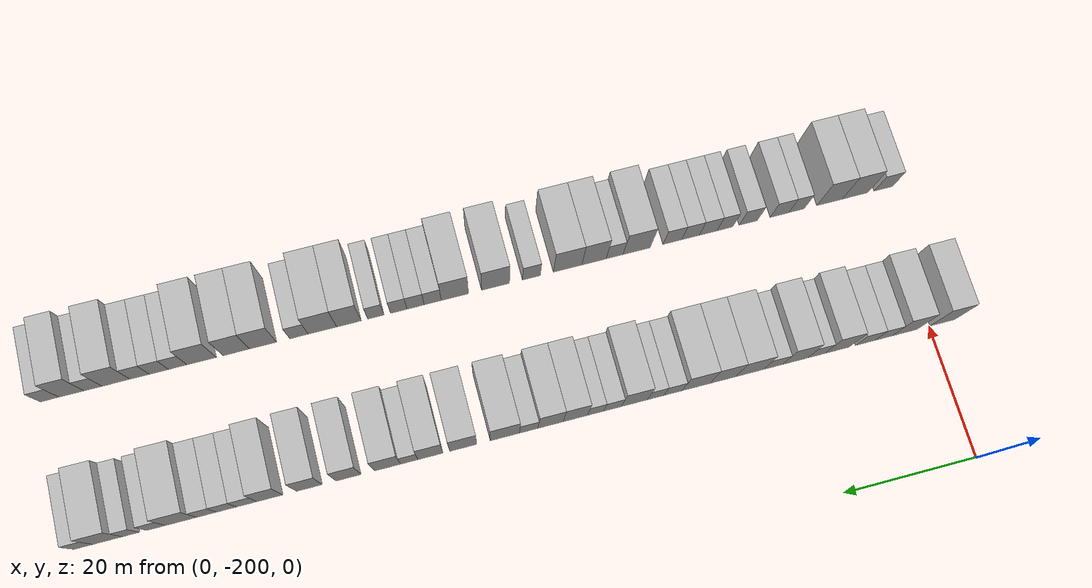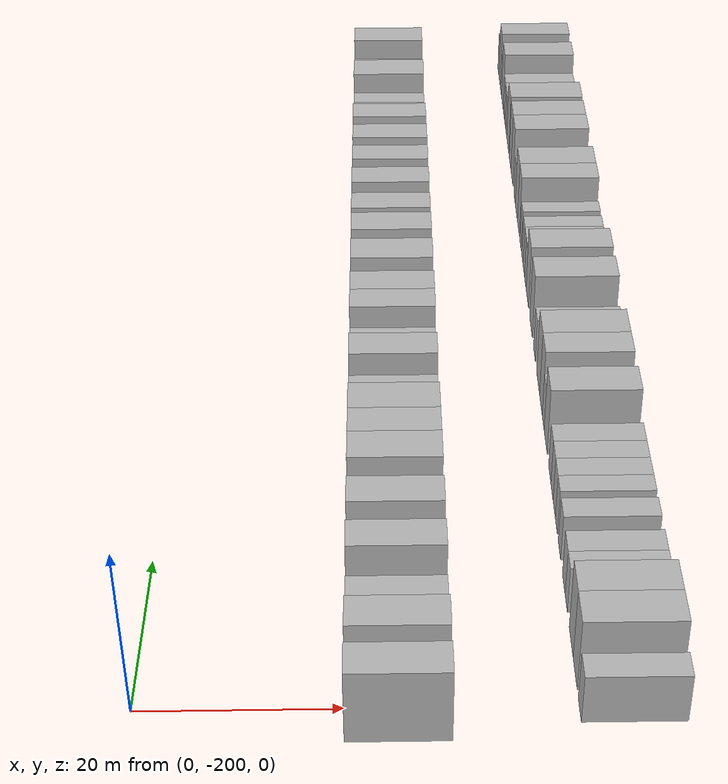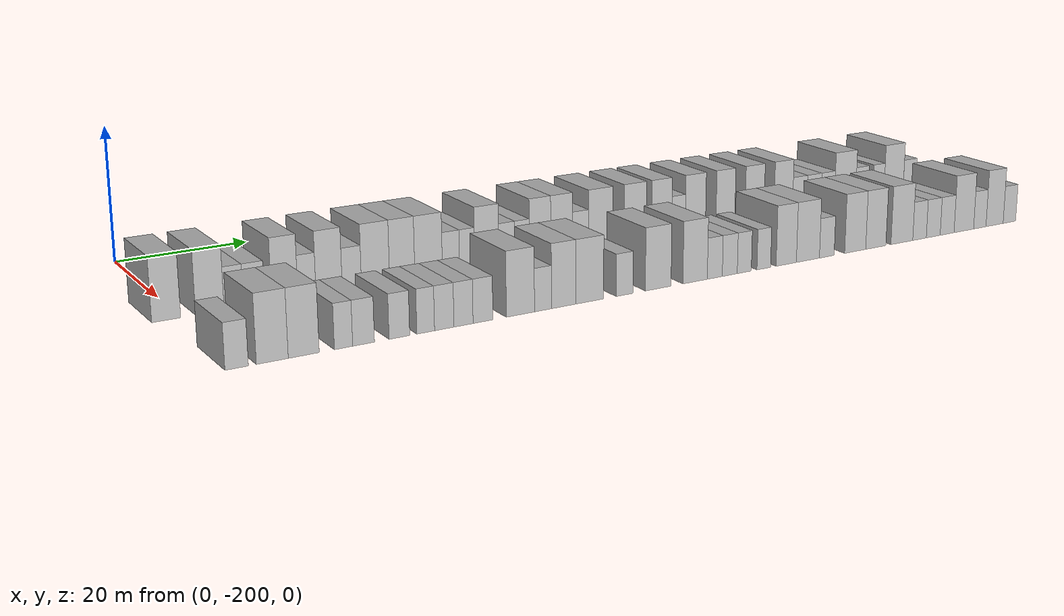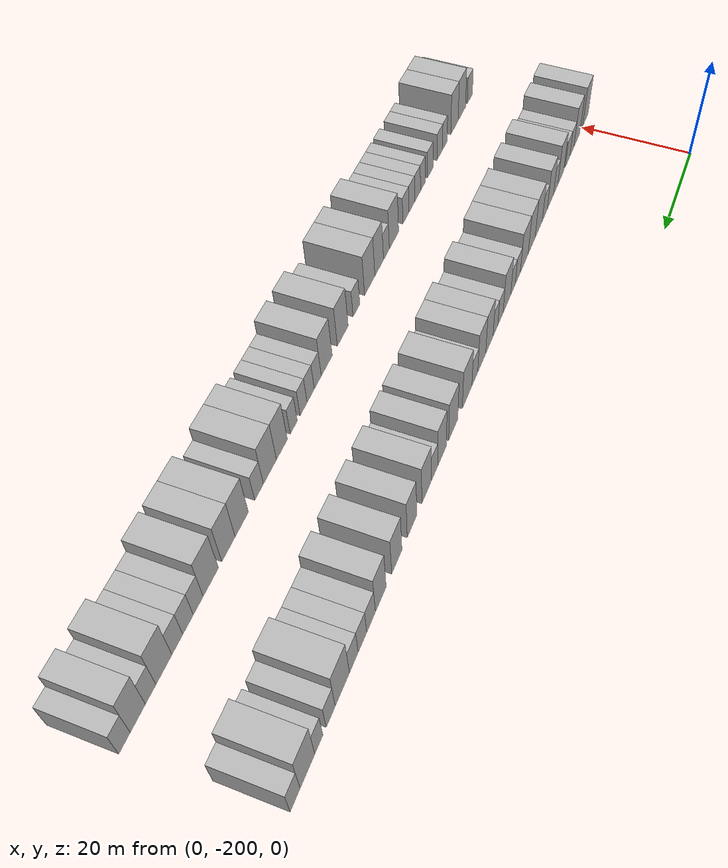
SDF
<sdf version="1.6">
 <world name="default">
  <model name="building_1">
   <static>1</static>
   <pose>25.0000 -202.0652 0 0.000000 0.000000 0.000000</pose>
   <link name="link">
    <pose>0 0 4.50 0 0 0</pose>
    <collision name="collision"><geometry><box><size>10.0000 3.8695 9.0000</size></box></geometry></collision>
    <visual name="visual">
     <cast_shadows>0</cast_shadows>
     <geometry><box><size>10.0000 3.8695 9.0000</size></box></geometry>
     <material>
      <script>
       <uri>model://HANNAS_wall/materials/scripts</uri>
       <uri>model://HANNAS_wall/materials/textures</uri>
       <name>vrc/HANNAS_wall</name>
      </script>
     </material>
    </visual>
   </link>
  </model>
  <model name="building_2">
   <static>1</static>
   <pose>25.0000 -196.1760 0 0.000000 0.000000 0.000000</pose>
   <link name="link">
    <pose>0 0 4.50 0 0 0</pose>
    <collision name="collision"><geometry><box><size>10.0000 3.9089 9.0000</size></box></geometry></collision>
    <visual name="visual">
     <cast_shadows>0</cast_shadows>
     <geometry><box><size>10.0000 3.9089 9.0000</size></box></geometry>
     <material>
      <script>
       <uri>model://HANNAS_wall/materials/scripts</uri>
       <uri>model://HANNAS_wall/materials/textures</uri>
       <name>vrc/HANNAS_wall</name>
      </script>
     </material>
    </visual>
   </link>
  </model>
  <model name="building_3">
   <static>1</static>
   <pose>25.0000 -192.8934 0 0.000000 0.000000 0.000000</pose>
   <link name="link">
    <pose>0 0 3.00 0 0 0</pose>
    <collision name="collision"><geometry><box><size>10.0000 2.6564 6.0000</size></box></geometry></collision>
    <visual name="visual">
     <cast_shadows>0</cast_shadows>
     <geometry><box><size>10.0000 2.6564 6.0000</size></box></geometry>
     <material>
      <script>
       <uri>model://HANNAS_wall/materials/scripts</uri>
       <uri>model://HANNAS_wall/materials/textures</uri>
       <name>vrc/HANNAS_wall</name>
      </script>
     </material>
    </visual>
   </link>
  </model>
  <model name="building_4">
   <static>1</static>
   <pose>25.0000 -190.0712 0 0.000000 0.000000 0.000000</pose>
   <link name="link">
    <pose>0 0 3.00 0 0 0</pose>
    <collision name="collision"><geometry><box><size>10.0000 2.9880 6.0000</size></box></geometry></collision>
    <visual name="visual">
     <cast_shadows>0</cast_shadows>
     <geometry><box><size>10.0000 2.9880 6.0000</size></box></geometry>
     <material>
      <script>
       <uri>model://HANNAS_wall/materials/scripts</uri>
       <uri>model://HANNAS_wall/materials/textures</uri>
       <name>vrc/HANNAS_wall</name>
      </script>
     </material>
    </visual>
   </link>
  </model>
  <model name="building_5">
   <static>1</static>
   <pose>25.0000 -185.6982 0 0.000000 0.000000 0.000000</pose>
   <link name="link">
    <pose>0 0 4.50 0 0 0</pose>
    <collision name="collision"><geometry><box><size>10.0000 3.7579 9.0000</size></box></geometry></collision>
    <visual name="visual">
     <cast_shadows>0</cast_shadows>
     <geometry><box><size>10.0000 3.7579 9.0000</size></box></geometry>
     <material>
      <script>
       <uri>model://HANNAS_wall/materials/scripts</uri>
       <uri>model://HANNAS_wall/materials/textures</uri>
       <name>vrc/HANNAS_wall</name>
      </script>
     </material>
    </visual>
   </link>
  </model>
  <model name="building_6">
   <static>1</static>
   <pose>25.0000 -182.5065 0 0.000000 0.000000 0.000000</pose>
   <link name="link">
    <pose>0 0 3.00 0 0 0</pose>
    <collision name="collision"><geometry><box><size>10.0000 2.6255 6.0000</size></box></geometry></collision>
    <visual name="visual">
     <cast_shadows>0</cast_shadows>
     <geometry><box><size>10.0000 2.6255 6.0000</size></box></geometry>
     <material>
      <script>
       <uri>model://HANNAS_wall/materials/scripts</uri>
       <uri>model://HANNAS_wall/materials/textures</uri>
       <name>vrc/HANNAS_wall</name>
      </script>
     </material>
    </visual>
   </link>
  </model>
  <model name="building_7">
   <static>1</static>
   <pose>25.0000 -179.2586 0 0.000000 0.000000 0.000000</pose>
   <link name="link">
    <pose>0 0 4.50 0 0 0</pose>
    <collision name="collision"><geometry><box><size>10.0000 3.8704 9.0000</size></box></geometry></collision>
    <visual name="visual">
     <cast_shadows>0</cast_shadows>
     <geometry><box><size>10.0000 3.8704 9.0000</size></box></geometry>
     <material>
      <script>
       <uri>model://HANNAS_wall/materials/scripts</uri>
       <uri>model://HANNAS_wall/materials/textures</uri>
       <name>vrc/HANNAS_wall</name>
      </script>
     </material>
    </visual>
   </link>
  </model>
  <model name="building_8">
   <static>1</static>
   <pose>25.0000 -175.8857 0 0.000000 0.000000 0.000000</pose>
   <link name="link">
    <pose>0 0 3.00 0 0 0</pose>
    <collision name="collision"><geometry><box><size>10.0000 2.8753 6.0000</size></box></geometry></collision>
    <visual name="visual">
     <cast_shadows>0</cast_shadows>
     <geometry><box><size>10.0000 2.8753 6.0000</size></box></geometry>
     <material>
      <script>
       <uri>model://HANNAS_wall/materials/scripts</uri>
       <uri>model://HANNAS_wall/materials/textures</uri>
       <name>vrc/HANNAS_wall</name>
      </script>
     </material>
    </visual>
   </link>
  </model>
  <model name="building_9">
   <static>1</static>
   <pose>25.0000 -172.3090 0 0.000000 0.000000 0.000000</pose>
   <link name="link">
    <pose>0 0 4.50 0 0 0</pose>
    <collision name="collision"><geometry><box><size>10.0000 4.2781 9.0000</size></box></geometry></collision>
    <visual name="visual">
     <cast_shadows>0</cast_shadows>
     <geometry><box><size>10.0000 4.2781 9.0000</size></box></geometry>
     <material>
      <script>
       <uri>model://HANNAS_wall/materials/scripts</uri>
       <uri>model://HANNAS_wall/materials/textures</uri>
       <name>vrc/HANNAS_wall</name>
      </script>
     </material>
    </visual>
   </link>
  </model>
  <model name="building_10">
   <static>1</static>
   <pose>25.0000 -168.2211 0 0.000000 0.000000 0.000000</pose>
   <link name="link">
    <pose>0 0 4.50 0 0 0</pose>
    <collision name="collision"><geometry><box><size>10.0000 3.8978 9.0000</size></box></geometry></collision>
    <visual name="visual">
     <cast_shadows>0</cast_shadows>
     <geometry><box><size>10.0000 3.8978 9.0000</size></box></geometry>
     <material>
      <script>
       <uri>model://HANNAS_wall/materials/scripts</uri>
       <uri>model://HANNAS_wall/materials/textures</uri>
       <name>vrc/HANNAS_wall</name>
      </script>
     </material>
    </visual>
   </link>
  </model>
  <model name="building_11">
   <static>1</static>
   <pose>25.0000 -164.1070 0 0.000000 0.000000 0.000000</pose>
   <link name="link">
    <pose>0 0 4.50 0 0 0</pose>
    <collision name="collision"><geometry><box><size>10.0000 4.3304 9.0000</size></box></geometry></collision>
    <visual name="visual">
     <cast_shadows>0</cast_shadows>
     <geometry><box><size>10.0000 4.3304 9.0000</size></box></geometry>
     <material>
      <script>
       <uri>model://HANNAS_wall/materials/scripts</uri>
       <uri>model://HANNAS_wall/materials/textures</uri>
       <name>vrc/HANNAS_wall</name>
      </script>
     </material>
    </visual>
   </link>
  </model>
  <model name="building_12">
   <static>1</static>
   <pose>25.0000 -160.5706 0 0.000000 0.000000 0.000000</pose>
   <link name="link">
    <pose>0 0 3.00 0 0 0</pose>
    <collision name="collision"><geometry><box><size>10.0000 2.7423 6.0000</size></box></geometry></collision>
    <visual name="visual">
     <cast_shadows>0</cast_shadows>
     <geometry><box><size>10.0000 2.7423 6.0000</size></box></geometry>
     <material>
      <script>
       <uri>model://HANNAS_wall/materials/scripts</uri>
       <uri>model://HANNAS_wall/materials/textures</uri>
       <name>vrc/HANNAS_wall</name>
      </script>
     </material>
    </visual>
   </link>
  </model>
  <model name="building_13">
   <static>1</static>
   <pose>25.0000 -157.9767 0 0.000000 0.000000 0.000000</pose>
   <link name="link">
    <pose>0 0 3.00 0 0 0</pose>
    <collision name="collision"><geometry><box><size>10.0000 2.4453 6.0000</size></box></geometry></collision>
    <visual name="visual">
     <cast_shadows>0</cast_shadows>
     <geometry><box><size>10.0000 2.4453 6.0000</size></box></geometry>
     <material>
      <script>
       <uri>model://HANNAS_wall/materials/scripts</uri>
       <uri>model://HANNAS_wall/materials/textures</uri>
       <name>vrc/HANNAS_wall</name>
      </script>
     </material>
    </visual>
   </link>
  </model>
  <model name="building_14">
   <static>1</static>
   <pose>25.0000 -154.7850 0 0.000000 0.000000 0.000000</pose>
   <link name="link">
    <pose>0 0 4.50 0 0 0</pose>
    <collision name="collision"><geometry><box><size>10.0000 3.9381 9.0000</size></box></geometry></collision>
    <visual name="visual">
     <cast_shadows>0</cast_shadows>
     <geometry><box><size>10.0000 3.9381 9.0000</size></box></geometry>
     <material>
      <script>
       <uri>model://HANNAS_wall/materials/scripts</uri>
       <uri>model://HANNAS_wall/materials/textures</uri>
       <name>vrc/HANNAS_wall</name>
      </script>
     </material>
    </visual>
   </link>
  </model>
  <model name="building_15">
   <static>1</static>
   <pose>25.0000 -151.4833 0 0.000000 0.000000 0.000000</pose>
   <link name="link">
    <pose>0 0 3.00 0 0 0</pose>
    <collision name="collision"><geometry><box><size>10.0000 2.6653 6.0000</size></box></geometry></collision>
    <visual name="visual">
     <cast_shadows>0</cast_shadows>
     <geometry><box><size>10.0000 2.6653 6.0000</size></box></geometry>
     <material>
      <script>
       <uri>model://HANNAS_wall/materials/scripts</uri>
       <uri>model://HANNAS_wall/materials/textures</uri>
       <name>vrc/HANNAS_wall</name>
      </script>
     </material>
    </visual>
   </link>
  </model>
  <model name="building_16">
   <static>1</static>
   <pose>25.0000 -148.9385 0 0.000000 0.000000 0.000000</pose>
   <link name="link">
    <pose>0 0 3.00 0 0 0</pose>
    <collision name="collision"><geometry><box><size>10.0000 2.4245 6.0000</size></box></geometry></collision>
    <visual name="visual">
     <cast_shadows>0</cast_shadows>
     <geometry><box><size>10.0000 2.4245 6.0000</size></box></geometry>
     <material>
      <script>
       <uri>model://HANNAS_wall/materials/scripts</uri>
       <uri>model://HANNAS_wall/materials/textures</uri>
       <name>vrc/HANNAS_wall</name>
      </script>
     </material>
    </visual>
   </link>
  </model>
  <model name="building_17">
   <static>1</static>
   <pose>25.0000 -145.9141 0 0.000000 0.000000 0.000000</pose>
   <link name="link">
    <pose>0 0 4.50 0 0 0</pose>
    <collision name="collision"><geometry><box><size>10.0000 3.6242 9.0000</size></box></geometry></collision>
    <visual name="visual">
     <cast_shadows>0</cast_shadows>
     <geometry><box><size>10.0000 3.6242 9.0000</size></box></geometry>
     <material>
      <script>
       <uri>model://HANNAS_wall/materials/scripts</uri>
       <uri>model://HANNAS_wall/materials/textures</uri>
       <name>vrc/HANNAS_wall</name>
      </script>
     </material>
    </visual>
   </link>
  </model>
  <model name="building_18">
   <static>1</static>
   <pose>25.0000 -142.2166 0 0.000000 0.000000 0.000000</pose>
   <link name="link">
    <pose>0 0 4.50 0 0 0</pose>
    <collision name="collision"><geometry><box><size>10.0000 3.7708 9.0000</size></box></geometry></collision>
    <visual name="visual">
     <cast_shadows>0</cast_shadows>
     <geometry><box><size>10.0000 3.7708 9.0000</size></box></geometry>
     <material>
      <script>
       <uri>model://HANNAS_wall/materials/scripts</uri>
       <uri>model://HANNAS_wall/materials/textures</uri>
       <name>vrc/HANNAS_wall</name>
      </script>
     </material>
    </visual>
   </link>
  </model>
  <model name="building_19">
   <static>1</static>
   <pose>25.0000 -138.9541 0 0.000000 0.000000 0.000000</pose>
   <link name="link">
    <pose>0 0 3.00 0 0 0</pose>
    <collision name="collision"><geometry><box><size>10.0000 2.7542 6.0000</size></box></geometry></collision>
    <visual name="visual">
     <cast_shadows>0</cast_shadows>
     <geometry><box><size>10.0000 2.7542 6.0000</size></box></geometry>
     <material>
      <script>
       <uri>model://HANNAS_wall/materials/scripts</uri>
       <uri>model://HANNAS_wall/materials/textures</uri>
       <name>vrc/HANNAS_wall</name>
      </script>
     </material>
    </visual>
   </link>
  </model>
  <model name="building_20">
   <static>1</static>
   <pose>25.0000 -135.4102 0 0.000000 0.000000 0.000000</pose>
   <link name="link">
    <pose>0 0 4.50 0 0 0</pose>
    <collision name="collision"><geometry><box><size>10.0000 4.3336 9.0000</size></box></geometry></collision>
    <visual name="visual">
     <cast_shadows>0</cast_shadows>
     <geometry><box><size>10.0000 4.3336 9.0000</size></box></geometry>
     <material>
      <script>
       <uri>model://HANNAS_wall/materials/scripts</uri>
       <uri>model://HANNAS_wall/materials/textures</uri>
       <name>vrc/HANNAS_wall</name>
      </script>
     </material>
    </visual>
   </link>
  </model>
  <model name="building_21">
   <static>1</static>
   <pose>25.0000 -129.2474 0 0.000000 0.000000 0.000000</pose>
   <link name="link">
    <pose>0 0 4.50 0 0 0</pose>
    <collision name="collision"><geometry><box><size>10.0000 3.9918 9.0000</size></box></geometry></collision>
    <visual name="visual">
     <cast_shadows>0</cast_shadows>
     <geometry><box><size>10.0000 3.9918 9.0000</size></box></geometry>
     <material>
      <script>
       <uri>model://HANNAS_wall/materials/scripts</uri>
       <uri>model://HANNAS_wall/materials/textures</uri>
       <name>vrc/HANNAS_wall</name>
      </script>
     </material>
    </visual>
   </link>
  </model>
  <model name="building_22">
   <static>1</static>
   <pose>25.0000 -124.4086 0 0.000000 0.000000 0.000000</pose>
   <link name="link">
    <pose>0 0 4.50 0 0 0</pose>
    <collision name="collision"><geometry><box><size>10.0000 3.6859 9.0000</size></box></geometry></collision>
    <visual name="visual">
     <cast_shadows>0</cast_shadows>
     <geometry><box><size>10.0000 3.6859 9.0000</size></box></geometry>
     <material>
      <script>
       <uri>model://HANNAS_wall/materials/scripts</uri>
       <uri>model://HANNAS_wall/materials/textures</uri>
       <name>vrc/HANNAS_wall</name>
      </script>
     </material>
    </visual>
   </link>
  </model>
  <model name="building_23">
   <static>1</static>
   <pose>25.0000 -121.2948 0 0.000000 0.000000 0.000000</pose>
   <link name="link">
    <pose>0 0 3.00 0 0 0</pose>
    <collision name="collision"><geometry><box><size>10.0000 2.5416 6.0000</size></box></geometry></collision>
    <visual name="visual">
     <cast_shadows>0</cast_shadows>
     <geometry><box><size>10.0000 2.5416 6.0000</size></box></geometry>
     <material>
      <script>
       <uri>model://HANNAS_wall/materials/scripts</uri>
       <uri>model://HANNAS_wall/materials/textures</uri>
       <name>vrc/HANNAS_wall</name>
      </script>
     </material>
    </visual>
   </link>
  </model>
  <model name="building_24">
   <static>1</static>
   <pose>25.0000 -118.1047 0 0.000000 0.000000 0.000000</pose>
   <link name="link">
    <pose>0 0 4.50 0 0 0</pose>
    <collision name="collision"><geometry><box><size>10.0000 3.8387 9.0000</size></box></geometry></collision>
    <visual name="visual">
     <cast_shadows>0</cast_shadows>
     <geometry><box><size>10.0000 3.8387 9.0000</size></box></geometry>
     <material>
      <script>
       <uri>model://HANNAS_wall/materials/scripts</uri>
       <uri>model://HANNAS_wall/materials/textures</uri>
       <name>vrc/HANNAS_wall</name>
      </script>
     </material>
    </visual>
   </link>
  </model>
  <model name="building_25">
   <static>1</static>
   <pose>25.0000 -112.3611 0 0.000000 0.000000 0.000000</pose>
   <link name="link">
    <pose>0 0 4.50 0 0 0</pose>
    <collision name="collision"><geometry><box><size>10.0000 3.6486 9.0000</size></box></geometry></collision>
    <visual name="visual">
     <cast_shadows>0</cast_shadows>
     <geometry><box><size>10.0000 3.6486 9.0000</size></box></geometry>
     <material>
      <script>
       <uri>model://HANNAS_wall/materials/scripts</uri>
       <uri>model://HANNAS_wall/materials/textures</uri>
       <name>vrc/HANNAS_wall</name>
      </script>
     </material>
    </visual>
   </link>
  </model>
  <model name="building_26">
   <static>1</static>
   <pose>25.0000 -106.6655 0 0.000000 0.000000 0.000000</pose>
   <link name="link">
    <pose>0 0 4.50 0 0 0</pose>
    <collision name="collision"><geometry><box><size>10.0000 3.7426 9.0000</size></box></geometry></collision>
    <visual name="visual">
     <cast_shadows>0</cast_shadows>
     <geometry><box><size>10.0000 3.7426 9.0000</size></box></geometry>
     <material>
      <script>
       <uri>model://HANNAS_wall/materials/scripts</uri>
       <uri>model://HANNAS_wall/materials/textures</uri>
       <name>vrc/HANNAS_wall</name>
      </script>
     </material>
    </visual>
   </link>
  </model>
  <model name="building_27">
   <static>1</static>
   <pose>25.0000 -100.9194 0 0.000000 0.000000 0.000000</pose>
   <link name="link">
    <pose>0 0 4.50 0 0 0</pose>
    <collision name="collision"><geometry><box><size>10.0000 3.7495 9.0000</size></box></geometry></collision>
    <visual name="visual">
     <cast_shadows>0</cast_shadows>
     <geometry><box><size>10.0000 3.7495 9.0000</size></box></geometry>
     <material>
      <script>
       <uri>model://HANNAS_wall/materials/scripts</uri>
       <uri>model://HANNAS_wall/materials/textures</uri>
       <name>vrc/HANNAS_wall</name>
      </script>
     </material>
    </visual>
   </link>
  </model>
  <model name="building_28">
   <static>1</static>
   <pose>25.0000 -97.5588 0 0.000000 0.000000 0.000000</pose>
   <link name="link">
    <pose>0 0 3.00 0 0 0</pose>
    <collision name="collision"><geometry><box><size>10.0000 2.9717 6.0000</size></box></geometry></collision>
    <visual name="visual">
     <cast_shadows>0</cast_shadows>
     <geometry><box><size>10.0000 2.9717 6.0000</size></box></geometry>
     <material>
      <script>
       <uri>model://HANNAS_wall/materials/scripts</uri>
       <uri>model://HANNAS_wall/materials/textures</uri>
       <name>vrc/HANNAS_wall</name>
      </script>
     </material>
    </visual>
   </link>
  </model>
  <model name="building_29">
   <static>1</static>
   <pose>25.0000 -94.6453 0 0.000000 0.000000 0.000000</pose>
   <link name="link">
    <pose>0 0 3.00 0 0 0</pose>
    <collision name="collision"><geometry><box><size>10.0000 2.8553 6.0000</size></box></geometry></collision>
    <visual name="visual">
     <cast_shadows>0</cast_shadows>
     <geometry><box><size>10.0000 2.8553 6.0000</size></box></geometry>
     <material>
      <script>
       <uri>model://HANNAS_wall/materials/scripts</uri>
       <uri>model://HANNAS_wall/materials/textures</uri>
       <name>vrc/HANNAS_wall</name>
      </script>
     </material>
    </visual>
   </link>
  </model>
  <model name="building_30">
   <static>1</static>
   <pose>25.0000 -91.7965 0 0.000000 0.000000 0.000000</pose>
   <link name="link">
    <pose>0 0 3.00 0 0 0</pose>
    <collision name="collision"><geometry><box><size>10.0000 2.8423 6.0000</size></box></geometry></collision>
    <visual name="visual">
     <cast_shadows>0</cast_shadows>
     <geometry><box><size>10.0000 2.8423 6.0000</size></box></geometry>
     <material>
      <script>
       <uri>model://HANNAS_wall/materials/scripts</uri>
       <uri>model://HANNAS_wall/materials/textures</uri>
       <name>vrc/HANNAS_wall</name>
      </script>
     </material>
    </visual>
   </link>
  </model>
  <model name="building_31">
   <static>1</static>
   <pose>25.0000 -88.1324 0 0.000000 0.000000 0.000000</pose>
   <link name="link">
    <pose>0 0 4.50 0 0 0</pose>
    <collision name="collision"><geometry><box><size>10.0000 4.4860 9.0000</size></box></geometry></collision>
    <visual name="visual">
     <cast_shadows>0</cast_shadows>
     <geometry><box><size>10.0000 4.4860 9.0000</size></box></geometry>
     <material>
      <script>
       <uri>model://HANNAS_wall/materials/scripts</uri>
       <uri>model://HANNAS_wall/materials/textures</uri>
       <name>vrc/HANNAS_wall</name>
      </script>
     </material>
    </visual>
   </link>
  </model>
  <model name="building_32">
   <static>1</static>
   <pose>25.0000 -84.5244 0 0.000000 0.000000 0.000000</pose>
   <link name="link">
    <pose>0 0 3.00 0 0 0</pose>
    <collision name="collision"><geometry><box><size>10.0000 2.7300 6.0000</size></box></geometry></collision>
    <visual name="visual">
     <cast_shadows>0</cast_shadows>
     <geometry><box><size>10.0000 2.7300 6.0000</size></box></geometry>
     <material>
      <script>
       <uri>model://HANNAS_wall/materials/scripts</uri>
       <uri>model://HANNAS_wall/materials/textures</uri>
       <name>vrc/HANNAS_wall</name>
      </script>
     </material>
    </visual>
   </link>
  </model>
  <model name="building_33">
   <static>1</static>
   <pose>25.0000 -80.9583 0 0.000000 0.000000 0.000000</pose>
   <link name="link">
    <pose>0 0 3.00 0 0 0</pose>
    <collision name="collision"><geometry><box><size>10.0000 2.4023 6.0000</size></box></geometry></collision>
    <visual name="visual">
     <cast_shadows>0</cast_shadows>
     <geometry><box><size>10.0000 2.4023 6.0000</size></box></geometry>
     <material>
      <script>
       <uri>model://HANNAS_wall/materials/scripts</uri>
       <uri>model://HANNAS_wall/materials/textures</uri>
       <name>vrc/HANNAS_wall</name>
      </script>
     </material>
    </visual>
   </link>
  </model>
  <model name="building_34">
   <static>1</static>
   <pose>25.0000 -77.6460 0 0.000000 0.000000 0.000000</pose>
   <link name="link">
    <pose>0 0 4.50 0 0 0</pose>
    <collision name="collision"><geometry><box><size>10.0000 4.2224 9.0000</size></box></geometry></collision>
    <visual name="visual">
     <cast_shadows>0</cast_shadows>
     <geometry><box><size>10.0000 4.2224 9.0000</size></box></geometry>
     <material>
      <script>
       <uri>model://HANNAS_wall/materials/scripts</uri>
       <uri>model://HANNAS_wall/materials/textures</uri>
       <name>vrc/HANNAS_wall</name>
      </script>
     </material>
    </visual>
   </link>
  </model>
  <model name="building_35">
   <static>1</static>
   <pose>25.0000 -74.1463 0 0.000000 0.000000 0.000000</pose>
   <link name="link">
    <pose>0 0 3.00 0 0 0</pose>
    <collision name="collision"><geometry><box><size>10.0000 2.7769 6.0000</size></box></geometry></collision>
    <visual name="visual">
     <cast_shadows>0</cast_shadows>
     <geometry><box><size>10.0000 2.7769 6.0000</size></box></geometry>
     <material>
      <script>
       <uri>model://HANNAS_wall/materials/scripts</uri>
       <uri>model://HANNAS_wall/materials/textures</uri>
       <name>vrc/HANNAS_wall</name>
      </script>
     </material>
    </visual>
   </link>
  </model>
  <model name="building_109">
   <static>1</static>
   <pose>47.0000 -200.5299 0 0.000000 0.000000 0.000000</pose>
   <link name="link">
    <pose>0 0 3.00 0 0 0</pose>
    <collision name="collision"><geometry><box><size>10.0000 2.9402 6.0000</size></box></geometry></collision>
    <visual name="visual">
     <cast_shadows>0</cast_shadows>
     <geometry><box><size>10.0000 2.9402 6.0000</size></box></geometry>
     <material>
      <script>
       <uri>model://HANNAS_wall/materials/scripts</uri>
       <uri>model://HANNAS_wall/materials/textures</uri>
       <name>vrc/HANNAS_wall</name>
      </script>
     </material>
    </visual>
   </link>
  </model>
  <model name="building_110">
   <static>1</static>
   <pose>47.0000 -196.0163 0 0.000000 0.000000 0.000000</pose>
   <link name="link">
    <pose>0 0 4.50 0 0 0</pose>
    <collision name="collision"><geometry><box><size>10.0000 4.0870 9.0000</size></box></geometry></collision>
    <visual name="visual">
     <cast_shadows>0</cast_shadows>
     <geometry><box><size>10.0000 4.0870 9.0000</size></box></geometry>
     <material>
      <script>
       <uri>model://HANNAS_wall/materials/scripts</uri>
       <uri>model://HANNAS_wall/materials/textures</uri>
       <name>vrc/HANNAS_wall</name>
      </script>
     </material>
    </visual>
   </link>
  </model>
  <model name="building_111">
   <static>1</static>
   <pose>47.0000 -191.9500 0 0.000000 0.000000 0.000000</pose>
   <link name="link">
    <pose>0 0 4.50 0 0 0</pose>
    <collision name="collision"><geometry><box><size>10.0000 4.0455 9.0000</size></box></geometry></collision>
    <visual name="visual">
     <cast_shadows>0</cast_shadows>
     <geometry><box><size>10.0000 4.0455 9.0000</size></box></geometry>
     <material>
      <script>
       <uri>model://HANNAS_wall/materials/scripts</uri>
       <uri>model://HANNAS_wall/materials/textures</uri>
       <name>vrc/HANNAS_wall</name>
      </script>
     </material>
    </visual>
   </link>
  </model>
  <model name="building_112">
   <static>1</static>
   <pose>47.0000 -186.7006 0 0.000000 0.000000 0.000000</pose>
   <link name="link">
    <pose>0 0 3.00 0 0 0</pose>
    <collision name="collision"><geometry><box><size>10.0000 2.4532 6.0000</size></box></geometry></collision>
    <visual name="visual">
     <cast_shadows>0</cast_shadows>
     <geometry><box><size>10.0000 2.4532 6.0000</size></box></geometry>
     <material>
      <script>
       <uri>model://HANNAS_wall/materials/scripts</uri>
       <uri>model://HANNAS_wall/materials/textures</uri>
       <name>vrc/HANNAS_wall</name>
      </script>
     </material>
    </visual>
   </link>
  </model>
  <model name="building_113">
   <static>1</static>
   <pose>47.0000 -183.9958 0 0.000000 0.000000 0.000000</pose>
   <link name="link">
    <pose>0 0 3.00 0 0 0</pose>
    <collision name="collision"><geometry><box><size>10.0000 2.9564 6.0000</size></box></geometry></collision>
    <visual name="visual">
     <cast_shadows>0</cast_shadows>
     <geometry><box><size>10.0000 2.9564 6.0000</size></box></geometry>
     <material>
      <script>
       <uri>model://HANNAS_wall/materials/scripts</uri>
       <uri>model://HANNAS_wall/materials/textures</uri>
       <name>vrc/HANNAS_wall</name>
      </script>
     </material>
    </visual>
   </link>
  </model>
  <model name="building_114">
   <static>1</static>
   <pose>47.0000 -179.0828 0 0.000000 0.000000 0.000000</pose>
   <link name="link">
    <pose>0 0 3.00 0 0 0</pose>
    <collision name="collision"><geometry><box><size>10.0000 2.8697 6.0000</size></box></geometry></collision>
    <visual name="visual">
     <cast_shadows>0</cast_shadows>
     <geometry><box><size>10.0000 2.8697 6.0000</size></box></geometry>
     <material>
      <script>
       <uri>model://HANNAS_wall/materials/scripts</uri>
       <uri>model://HANNAS_wall/materials/textures</uri>
       <name>vrc/HANNAS_wall</name>
      </script>
     </material>
    </visual>
   </link>
  </model>
  <model name="building_115">
   <static>1</static>
   <pose>47.0000 -175.3966 0 0.000000 0.000000 0.000000</pose>
   <link name="link">
    <pose>0 0 3.00 0 0 0</pose>
    <collision name="collision"><geometry><box><size>10.0000 2.5027 6.0000</size></box></geometry></collision>
    <visual name="visual">
     <cast_shadows>0</cast_shadows>
     <geometry><box><size>10.0000 2.5027 6.0000</size></box></geometry>
     <material>
      <script>
       <uri>model://HANNAS_wall/materials/scripts</uri>
       <uri>model://HANNAS_wall/materials/textures</uri>
       <name>vrc/HANNAS_wall</name>
      </script>
     </material>
    </visual>
   </link>
  </model>
  <model name="building_116">
   <static>1</static>
   <pose>47.0000 -172.7574 0 0.000000 0.000000 0.000000</pose>
   <link name="link">
    <pose>0 0 3.00 0 0 0</pose>
    <collision name="collision"><geometry><box><size>10.0000 2.7756 6.0000</size></box></geometry></collision>
    <visual name="visual">
     <cast_shadows>0</cast_shadows>
     <geometry><box><size>10.0000 2.7756 6.0000</size></box></geometry>
     <material>
      <script>
       <uri>model://HANNAS_wall/materials/scripts</uri>
       <uri>model://HANNAS_wall/materials/textures</uri>
       <name>vrc/HANNAS_wall</name>
      </script>
     </material>
    </visual>
   </link>
  </model>
  <model name="building_117">
   <static>1</static>
   <pose>47.0000 -169.9855 0 0.000000 0.000000 0.000000</pose>
   <link name="link">
    <pose>0 0 3.00 0 0 0</pose>
    <collision name="collision"><geometry><box><size>10.0000 2.7683 6.0000</size></box></geometry></collision>
    <visual name="visual">
     <cast_shadows>0</cast_shadows>
     <geometry><box><size>10.0000 2.7683 6.0000</size></box></geometry>
     <material>
      <script>
       <uri>model://HANNAS_wall/materials/scripts</uri>
       <uri>model://HANNAS_wall/materials/textures</uri>
       <name>vrc/HANNAS_wall</name>
      </script>
     </material>
    </visual>
   </link>
  </model>
  <model name="building_118">
   <static>1</static>
   <pose>47.0000 -167.1449 0 0.000000 0.000000 0.000000</pose>
   <link name="link">
    <pose>0 0 3.00 0 0 0</pose>
    <collision name="collision"><geometry><box><size>10.0000 2.9127 6.0000</size></box></geometry></collision>
    <visual name="visual">
     <cast_shadows>0</cast_shadows>
     <geometry><box><size>10.0000 2.9127 6.0000</size></box></geometry>
     <material>
      <script>
       <uri>model://HANNAS_wall/materials/scripts</uri>
       <uri>model://HANNAS_wall/materials/textures</uri>
       <name>vrc/HANNAS_wall</name>
      </script>
     </material>
    </visual>
   </link>
  </model>
  <model name="building_119">
   <static>1</static>
   <pose>47.0000 -161.5686 0 0.000000 0.000000 0.000000</pose>
   <link name="link">
    <pose>0 0 4.50 0 0 0</pose>
    <collision name="collision"><geometry><box><size>10.0000 4.2398 9.0000</size></box></geometry></collision>
    <visual name="visual">
     <cast_shadows>0</cast_shadows>
     <geometry><box><size>10.0000 4.2398 9.0000</size></box></geometry>
     <material>
      <script>
       <uri>model://HANNAS_wall/materials/scripts</uri>
       <uri>model://HANNAS_wall/materials/textures</uri>
       <name>vrc/HANNAS_wall</name>
      </script>
     </material>
    </visual>
   </link>
  </model>
  <model name="building_120">
   <static>1</static>
   <pose>47.0000 -158.1487 0 0.000000 0.000000 0.000000</pose>
   <link name="link">
    <pose>0 0 3.00 0 0 0</pose>
    <collision name="collision"><geometry><box><size>10.0000 2.6001 6.0000</size></box></geometry></collision>
    <visual name="visual">
     <cast_shadows>0</cast_shadows>
     <geometry><box><size>10.0000 2.6001 6.0000</size></box></geometry>
     <material>
      <script>
       <uri>model://HANNAS_wall/materials/scripts</uri>
       <uri>model://HANNAS_wall/materials/textures</uri>
       <name>vrc/HANNAS_wall</name>
      </script>
     </material>
    </visual>
   </link>
  </model>
  <model name="building_121">
   <static>1</static>
   <pose>47.0000 -154.9622 0 0.000000 0.000000 0.000000</pose>
   <link name="link">
    <pose>0 0 4.50 0 0 0</pose>
    <collision name="collision"><geometry><box><size>10.0000 3.7729 9.0000</size></box></geometry></collision>
    <visual name="visual">
     <cast_shadows>0</cast_shadows>
     <geometry><box><size>10.0000 3.7729 9.0000</size></box></geometry>
     <material>
      <script>
       <uri>model://HANNAS_wall/materials/scripts</uri>
       <uri>model://HANNAS_wall/materials/textures</uri>
       <name>vrc/HANNAS_wall</name>
      </script>
     </material>
    </visual>
   </link>
  </model>
  <model name="building_122">
   <static>1</static>
   <pose>47.0000 -150.8723 0 0.000000 0.000000 0.000000</pose>
   <link name="link">
    <pose>0 0 4.50 0 0 0</pose>
    <collision name="collision"><geometry><box><size>10.0000 4.4069 9.0000</size></box></geometry></collision>
    <visual name="visual">
     <cast_shadows>0</cast_shadows>
     <geometry><box><size>10.0000 4.4069 9.0000</size></box></geometry>
     <material>
      <script>
       <uri>model://HANNAS_wall/materials/scripts</uri>
       <uri>model://HANNAS_wall/materials/textures</uri>
       <name>vrc/HANNAS_wall</name>
      </script>
     </material>
    </visual>
   </link>
  </model>
  <model name="building_123">
   <static>1</static>
   <pose>47.0000 -145.2937 0 0.000000 0.000000 0.000000</pose>
   <link name="link">
    <pose>0 0 3.00 0 0 0</pose>
    <collision name="collision"><geometry><box><size>10.0000 2.7503 6.0000</size></box></geometry></collision>
    <visual name="visual">
     <cast_shadows>0</cast_shadows>
     <geometry><box><size>10.0000 2.7503 6.0000</size></box></geometry>
     <material>
      <script>
       <uri>model://HANNAS_wall/materials/scripts</uri>
       <uri>model://HANNAS_wall/materials/textures</uri>
       <name>vrc/HANNAS_wall</name>
      </script>
     </material>
    </visual>
   </link>
  </model>
  <model name="building_124">
   <static>1</static>
   <pose>47.0000 -139.7840 0 0.000000 0.000000 0.000000</pose>
   <link name="link">
    <pose>0 0 4.50 0 0 0</pose>
    <collision name="collision"><geometry><box><size>10.0000 4.2691 9.0000</size></box></geometry></collision>
    <visual name="visual">
     <cast_shadows>0</cast_shadows>
     <geometry><box><size>10.0000 4.2691 9.0000</size></box></geometry>
     <material>
      <script>
       <uri>model://HANNAS_wall/materials/scripts</uri>
       <uri>model://HANNAS_wall/materials/textures</uri>
       <name>vrc/HANNAS_wall</name>
      </script>
     </material>
    </visual>
   </link>
  </model>
  <model name="building_125">
   <static>1</static>
   <pose>47.0000 -133.5677 0 0.000000 0.000000 0.000000</pose>
   <link name="link">
    <pose>0 0 4.50 0 0 0</pose>
    <collision name="collision"><geometry><box><size>10.0000 4.1635 9.0000</size></box></geometry></collision>
    <visual name="visual">
     <cast_shadows>0</cast_shadows>
     <geometry><box><size>10.0000 4.1635 9.0000</size></box></geometry>
     <material>
      <script>
       <uri>model://HANNAS_wall/materials/scripts</uri>
       <uri>model://HANNAS_wall/materials/textures</uri>
       <name>vrc/HANNAS_wall</name>
      </script>
     </material>
    </visual>
   </link>
  </model>
  <model name="building_126">
   <static>1</static>
   <pose>47.0000 -130.1866 0 0.000000 0.000000 0.000000</pose>
   <link name="link">
    <pose>0 0 3.00 0 0 0</pose>
    <collision name="collision"><geometry><box><size>10.0000 2.5987 6.0000</size></box></geometry></collision>
    <visual name="visual">
     <cast_shadows>0</cast_shadows>
     <geometry><box><size>10.0000 2.5987 6.0000</size></box></geometry>
     <material>
      <script>
       <uri>model://HANNAS_wall/materials/scripts</uri>
       <uri>model://HANNAS_wall/materials/textures</uri>
       <name>vrc/HANNAS_wall</name>
      </script>
     </material>
    </visual>
   </link>
  </model>
  <model name="building_127">
   <static>1</static>
   <pose>47.0000 -127.5816 0 0.000000 0.000000 0.000000</pose>
   <link name="link">
    <pose>0 0 3.00 0 0 0</pose>
    <collision name="collision"><geometry><box><size>10.0000 2.6112 6.0000</size></box></geometry></collision>
    <visual name="visual">
     <cast_shadows>0</cast_shadows>
     <geometry><box><size>10.0000 2.6112 6.0000</size></box></geometry>
     <material>
      <script>
       <uri>model://HANNAS_wall/materials/scripts</uri>
       <uri>model://HANNAS_wall/materials/textures</uri>
       <name>vrc/HANNAS_wall</name>
      </script>
     </material>
    </visual>
   </link>
  </model>
  <model name="building_128">
   <static>1</static>
   <pose>47.0000 -125.0328 0 0.000000 0.000000 0.000000</pose>
   <link name="link">
    <pose>0 0 3.00 0 0 0</pose>
    <collision name="collision"><geometry><box><size>10.0000 2.4865 6.0000</size></box></geometry></collision>
    <visual name="visual">
     <cast_shadows>0</cast_shadows>
     <geometry><box><size>10.0000 2.4865 6.0000</size></box></geometry>
     <material>
      <script>
       <uri>model://HANNAS_wall/materials/scripts</uri>
       <uri>model://HANNAS_wall/materials/textures</uri>
       <name>vrc/HANNAS_wall</name>
      </script>
     </material>
    </visual>
   </link>
  </model>
  <model name="building_129">
   <static>1</static>
   <pose>47.0000 -121.5657 0 0.000000 0.000000 0.000000</pose>
   <link name="link">
    <pose>0 0 3.00 0 0 0</pose>
    <collision name="collision"><geometry><box><size>10.0000 2.4478 6.0000</size></box></geometry></collision>
    <visual name="visual">
     <cast_shadows>0</cast_shadows>
     <geometry><box><size>10.0000 2.4478 6.0000</size></box></geometry>
     <material>
      <script>
       <uri>model://HANNAS_wall/materials/scripts</uri>
       <uri>model://HANNAS_wall/materials/textures</uri>
       <name>vrc/HANNAS_wall</name>
      </script>
     </material>
    </visual>
   </link>
  </model>
  <model name="building_130">
   <static>1</static>
   <pose>47.0000 -117.4892 0 0.000000 0.000000 0.000000</pose>
   <link name="link">
    <pose>0 0 4.50 0 0 0</pose>
    <collision name="collision"><geometry><box><size>10.0000 3.7053 9.0000</size></box></geometry></collision>
    <visual name="visual">
     <cast_shadows>0</cast_shadows>
     <geometry><box><size>10.0000 3.7053 9.0000</size></box></geometry>
     <material>
      <script>
       <uri>model://HANNAS_wall/materials/scripts</uri>
       <uri>model://HANNAS_wall/materials/textures</uri>
       <name>vrc/HANNAS_wall</name>
      </script>
     </material>
    </visual>
   </link>
  </model>
  <model name="building_131">
   <static>1</static>
   <pose>47.0000 -113.4959 0 0.000000 0.000000 0.000000</pose>
   <link name="link">
    <pose>0 0 4.50 0 0 0</pose>
    <collision name="collision"><geometry><box><size>10.0000 4.2812 9.0000</size></box></geometry></collision>
    <visual name="visual">
     <cast_shadows>0</cast_shadows>
     <geometry><box><size>10.0000 4.2812 9.0000</size></box></geometry>
     <material>
      <script>
       <uri>model://HANNAS_wall/materials/scripts</uri>
       <uri>model://HANNAS_wall/materials/textures</uri>
       <name>vrc/HANNAS_wall</name>
      </script>
     </material>
    </visual>
   </link>
  </model>
  <model name="building_132">
   <static>1</static>
   <pose>47.0000 -109.9737 0 0.000000 0.000000 0.000000</pose>
   <link name="link">
    <pose>0 0 3.00 0 0 0</pose>
    <collision name="collision"><geometry><box><size>10.0000 2.7632 6.0000</size></box></geometry></collision>
    <visual name="visual">
     <cast_shadows>0</cast_shadows>
     <geometry><box><size>10.0000 2.7632 6.0000</size></box></geometry>
     <material>
      <script>
       <uri>model://HANNAS_wall/materials/scripts</uri>
       <uri>model://HANNAS_wall/materials/textures</uri>
       <name>vrc/HANNAS_wall</name>
      </script>
     </material>
    </visual>
   </link>
  </model>
  <model name="building_133">
   <static>1</static>
   <pose>47.0000 -104.5661 0 0.000000 0.000000 0.000000</pose>
   <link name="link">
    <pose>0 0 4.50 0 0 0</pose>
    <collision name="collision"><geometry><box><size>10.0000 4.0520 9.0000</size></box></geometry></collision>
    <visual name="visual">
     <cast_shadows>0</cast_shadows>
     <geometry><box><size>10.0000 4.0520 9.0000</size></box></geometry>
     <material>
      <script>
       <uri>model://HANNAS_wall/materials/scripts</uri>
       <uri>model://HANNAS_wall/materials/textures</uri>
       <name>vrc/HANNAS_wall</name>
      </script>
     </material>
    </visual>
   </link>
  </model>
  <model name="building_134">
   <static>1</static>
   <pose>47.0000 -100.5649 0 0.000000 0.000000 0.000000</pose>
   <link name="link">
    <pose>0 0 4.50 0 0 0</pose>
    <collision name="collision"><geometry><box><size>10.0000 3.9505 9.0000</size></box></geometry></collision>
    <visual name="visual">
     <cast_shadows>0</cast_shadows>
     <geometry><box><size>10.0000 3.9505 9.0000</size></box></geometry>
     <material>
      <script>
       <uri>model://HANNAS_wall/materials/scripts</uri>
       <uri>model://HANNAS_wall/materials/textures</uri>
       <name>vrc/HANNAS_wall</name>
      </script>
     </material>
    </visual>
   </link>
  </model>
  <model name="building_135">
   <static>1</static>
   <pose>47.0000 -95.4128 0 0.000000 0.000000 0.000000</pose>
   <link name="link">
    <pose>0 0 4.50 0 0 0</pose>
    <collision name="collision"><geometry><box><size>10.0000 4.3537 9.0000</size></box></geometry></collision>
    <visual name="visual">
     <cast_shadows>0</cast_shadows>
     <geometry><box><size>10.0000 4.3537 9.0000</size></box></geometry>
     <material>
      <script>
       <uri>model://HANNAS_wall/materials/scripts</uri>
       <uri>model://HANNAS_wall/materials/textures</uri>
       <name>vrc/HANNAS_wall</name>
      </script>
     </material>
    </visual>
   </link>
  </model>
  <model name="building_136">
   <static>1</static>
   <pose>47.0000 -91.8652 0 0.000000 0.000000 0.000000</pose>
   <link name="link">
    <pose>0 0 3.00 0 0 0</pose>
    <collision name="collision"><geometry><box><size>10.0000 2.7415 6.0000</size></box></geometry></collision>
    <visual name="visual">
     <cast_shadows>0</cast_shadows>
     <geometry><box><size>10.0000 2.7415 6.0000</size></box></geometry>
     <material>
      <script>
       <uri>model://HANNAS_wall/materials/scripts</uri>
       <uri>model://HANNAS_wall/materials/textures</uri>
       <name>vrc/HANNAS_wall</name>
      </script>
     </material>
    </visual>
   </link>
  </model>
  <model name="building_137">
   <static>1</static>
   <pose>47.0000 -89.0723 0 0.000000 0.000000 0.000000</pose>
   <link name="link">
    <pose>0 0 3.00 0 0 0</pose>
    <collision name="collision"><geometry><box><size>10.0000 2.8442 6.0000</size></box></geometry></collision>
    <visual name="visual">
     <cast_shadows>0</cast_shadows>
     <geometry><box><size>10.0000 2.8442 6.0000</size></box></geometry>
     <material>
      <script>
       <uri>model://HANNAS_wall/materials/scripts</uri>
       <uri>model://HANNAS_wall/materials/textures</uri>
       <name>vrc/HANNAS_wall</name>
      </script>
     </material>
    </visual>
   </link>
  </model>
  <model name="building_138">
   <static>1</static>
   <pose>47.0000 -86.2153 0 0.000000 0.000000 0.000000</pose>
   <link name="link">
    <pose>0 0 3.00 0 0 0</pose>
    <collision name="collision"><geometry><box><size>10.0000 2.8699 6.0000</size></box></geometry></collision>
    <visual name="visual">
     <cast_shadows>0</cast_shadows>
     <geometry><box><size>10.0000 2.8699 6.0000</size></box></geometry>
     <material>
      <script>
       <uri>model://HANNAS_wall/materials/scripts</uri>
       <uri>model://HANNAS_wall/materials/textures</uri>
       <name>vrc/HANNAS_wall</name>
      </script>
     </material>
    </visual>
   </link>
  </model>
  <model name="building_139">
   <static>1</static>
   <pose>47.0000 -82.7260 0 0.000000 0.000000 0.000000</pose>
   <link name="link">
    <pose>0 0 4.50 0 0 0</pose>
    <collision name="collision"><geometry><box><size>10.0000 4.1088 9.0000</size></box></geometry></collision>
    <visual name="visual">
     <cast_shadows>0</cast_shadows>
     <geometry><box><size>10.0000 4.1088 9.0000</size></box></geometry>
     <material>
      <script>
       <uri>model://HANNAS_wall/materials/scripts</uri>
       <uri>model://HANNAS_wall/materials/textures</uri>
       <name>vrc/HANNAS_wall</name>
      </script>
     </material>
    </visual>
   </link>
  </model>
  <model name="building_140">
   <static>1</static>
   <pose>47.0000 -79.3577 0 0.000000 0.000000 0.000000</pose>
   <link name="link">
    <pose>0 0 3.00 0 0 0</pose>
    <collision name="collision"><geometry><box><size>10.0000 2.6278 6.0000</size></box></geometry></collision>
    <visual name="visual">
     <cast_shadows>0</cast_shadows>
     <geometry><box><size>10.0000 2.6278 6.0000</size></box></geometry>
     <material>
      <script>
       <uri>model://HANNAS_wall/materials/scripts</uri>
       <uri>model://HANNAS_wall/materials/textures</uri>
       <name>vrc/HANNAS_wall</name>
      </script>
     </material>
    </visual>
   </link>
  </model>
  <model name="building_141">
   <static>1</static>
   <pose>47.0000 -76.1974 0 0.000000 0.000000 0.000000</pose>
   <link name="link">
    <pose>0 0 4.50 0 0 0</pose>
    <collision name="collision"><geometry><box><size>10.0000 3.6928 9.0000</size></box></geometry></collision>
    <visual name="visual">
     <cast_shadows>0</cast_shadows>
     <geometry><box><size>10.0000 3.6928 9.0000</size></box></geometry>
     <material>
      <script>
       <uri>model://HANNAS_wall/materials/scripts</uri>
       <uri>model://HANNAS_wall/materials/textures</uri>
       <name>vrc/HANNAS_wall</name>
      </script>
     </material>
    </visual>
   </link>
  </model>
  <model name="building_142">
   <static>1</static>
   <pose>47.0000 -72.9912 0 0.000000 0.000000 0.000000</pose>
   <link name="link">
    <pose>0 0 3.00 0 0 0</pose>
    <collision name="collision"><geometry><box><size>10.0000 2.7196 6.0000</size></box></geometry></collision>
    <visual name="visual">
     <cast_shadows>0</cast_shadows>
     <geometry><box><size>10.0000 2.7196 6.0000</size></box></geometry>
     <material>
      <script>
       <uri>model://HANNAS_wall/materials/scripts</uri>
       <uri>model://HANNAS_wall/materials/textures</uri>
       <name>vrc/HANNAS_wall</name>
      </script>
     </material>
    </visual>
   </link>
  </model>
 </world>
</sdf>
